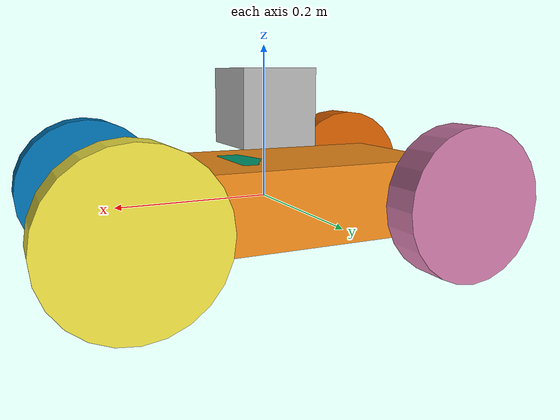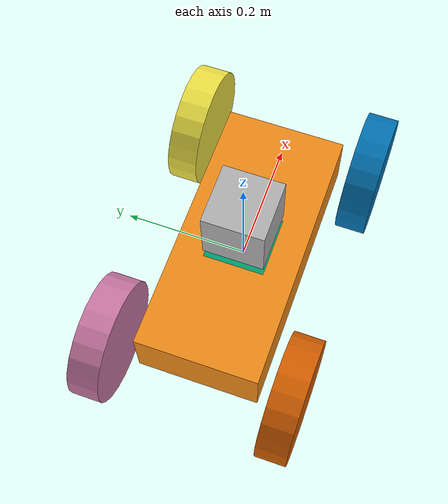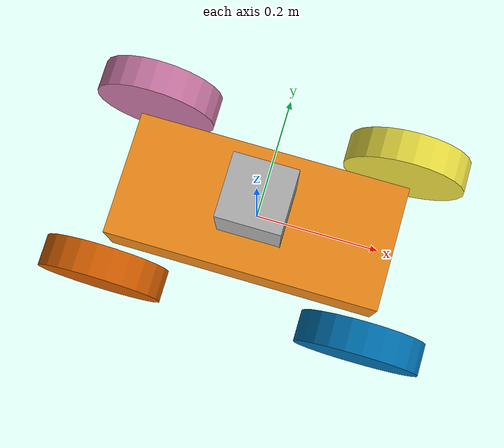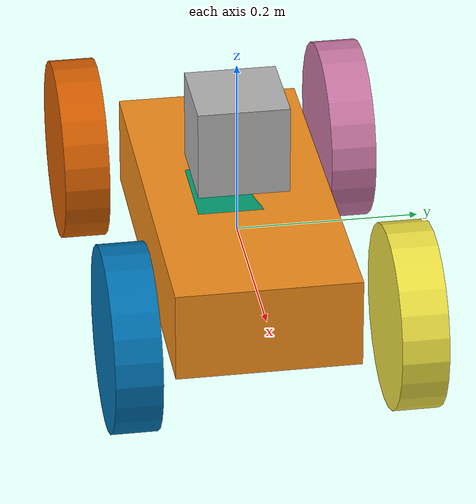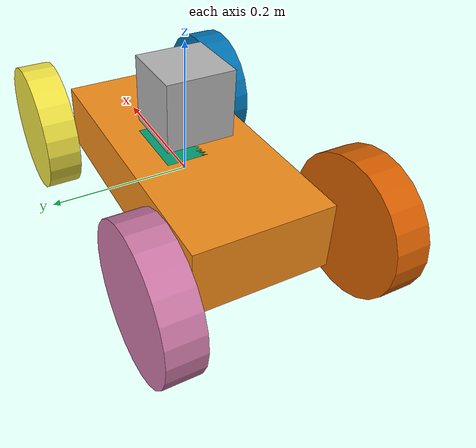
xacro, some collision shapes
<?xml version='1.0'?>
<robot name="myrobot" xmlns:xacro="http://www.ros.org/wiki/xacro">

  <xacro:include filename="$(find mybot_description)/urdf/mybot.gazebo" />
  <xacro:include filename="$(find mybot_description)/urdf/materials.xacro" />

  <link name='base_link'>
    <pose>0 0 0 0 0 0</pose>
    <collision name='collision'>
      <geometry>
        <box size=".44 .2 .1"/>
      </geometry>
    </collision>
    <visual name='base_link_visual'>
      <origin xyz="0 0 0" rpy=" 0 0 0"/>
      <geometry>
        <box size=".44 .2 .1"/>
      </geometry>
    </visual>
  </link>

  <link name="base_footprint"/>

  <joint name="base_link_to_base_footprint" type="fixed">
    <parent link="base_link"/>
    <child link="base_footprint"/>
    <origin rpy="0 0 0" xyz="0 0 -0.1"/>
  </joint>

  <link name='imu_link'>
    <pose>0 0 0 0 0 0</pose>
    <inertial>
      <mass value="3.0"/>
      <origin xyz="0.0 0 0." rpy=" 0 0 0"/>
      <inertia
          ixx="0.5" ixy="0" ixz="0"
          iyy="1.0" iyz="0"
          izz="0.1"
      />
    </inertial>
    <visual name='imu_visual'>
      <origin xyz="0 0 0" rpy=" 0 0 0"/>
      <geometry>
        <box size=".1 .1 .1"/>
      </geometry>
    </visual>
  </link>

  <link name="front_left_wheel">
    <!--origin xyz="0.1 0.13 0.1" rpy="0 1.5707 1.5707"/-->
    <collision name="collision">
      <origin xyz="0 0 0" rpy="0 1.5707 1.5707"/>
      <geometry>
        <cylinder radius="0.1" length="0.05"/>
      </geometry>
    </collision>
    <visual name="front_left_wheel_visual">
      <origin xyz="0 0 0" rpy="0 1.5707 1.5707"/>
      <geometry>
        <cylinder radius="0.1" length="0.05"/>
      </geometry>
    </visual>
    <inertial>
      <origin xyz="0 0 0" rpy="0 1.5707 1.5707"/>
      <mass value="5"/>
      <cylinder_inertia m="5" r="0.1" h="0.05"/>
      <inertia
        ixx="1.0" ixy="0.0" ixz="0.0"
        iyy="1.0" iyz="0.0"
        izz="1.0"/>
    </inertial>
  </link>

  <link name="front_right_wheel">
    <!--origin xyz="0.1 -0.13 0.1" rpy="0 1.5707 1.5707"/-->
    <collision name="collision">
      <origin xyz="0 0 0" rpy="0 1.5707 1.5707"/>
      <geometry>
        <cylinder radius="0.1" length="0.05"/>
      </geometry>
    </collision>
    <visual name="front_right_wheel_visual">
      <origin xyz="0 0 0" rpy="0 1.5707 1.5707"/>
      <geometry>
        <cylinder radius="0.1" length="0.05"/>
      </geometry>
    </visual>
    <inertial>
      <origin xyz="0 0 0" rpy="0 1.5707 1.5707"/>
      <mass value="5"/>
      <cylinder_inertia m="5" r="0.1" h="0.05"/>
      <inertia
        ixx="1.0" ixy="0.0" ixz="0.0"
        iyy="1.0" iyz="0.0"
        izz="1.0"/>
    </inertial>
  </link>

  <link name="back_right_wheel">
    <!--origin xyz="0.1 -0.13 0.1" rpy="0 1.5707 1.5707"/-->
    <collision name="collision">
      <origin xyz="0 0 0" rpy="0 1.5707 1.5707"/>
      <geometry>
        <cylinder radius="0.1" length="0.05"/>
      </geometry>
    </collision>
    <visual name="back_right_wheel_visual">
      <origin xyz="0 0 0" rpy="0 1.5707 1.5707"/>
      <geometry>
        <cylinder radius="0.1" length="0.05"/>
      </geometry>
    </visual>
    <inertial>
      <origin xyz="0 0 0" rpy="0 1.5707 1.5707"/>
      <mass value="5"/>
      <cylinder_inertia m="5" r="0.1" h="0.05"/>
      <inertia
        ixx="1.0" ixy="0.0" ixz="0.0"
        iyy="1.0" iyz="0.0"
        izz="1.0"/>
    </inertial>
  </link>

  <link name="back_left_wheel">
    <!--origin xyz="0.1 -0.13 0.1" rpy="0 1.5707 1.5707"/-->
    <collision name="collision">
      <origin xyz="0 0 0" rpy="0 1.5707 1.5707"/>
      <geometry>
        <cylinder radius="0.1" length="0.05"/>
      </geometry>
    </collision>
    <visual name="back_left_wheel_visual">
      <origin xyz="0 0 0" rpy="0 1.5707 1.5707"/>
      <geometry>
        <cylinder radius="0.1" length="0.05"/>
      </geometry>
    </visual>
    <inertial>
      <origin xyz="0 0 0" rpy="0 1.5707 1.5707"/>
      <mass value="5"/>
      <cylinder_inertia m="5" r="0.1" h="0.05"/>
      <inertia
        ixx="1.0" ixy="0.0" ixz="0.0"
        iyy="1.0" iyz="0.0"
        izz="1.0"/>
    </inertial>
  </link>

  <joint type="continuous" name="front_left_wheel_hinge">
    <origin xyz="0.21 0.15 0" rpy="0 0 0"/>
    <child link="front_left_wheel"/>
    <parent link="base_link"/>
    <axis xyz="0 1 0" rpy="0 0 0"/>
    <limit effort="100" velocity="100"/>
    <joint_properties damping="0.0" friction="0.0"/>
  </joint>

  <joint type="continuous" name="front_right_wheel_hinge">
    <origin xyz="0.21 -0.15 0" rpy="0 0 0"/>
    <child link="front_right_wheel"/>
    <parent link="base_link"/>
    <axis xyz="0 1 0" rpy="0 0 0"/>
    <limit effort="100" velocity="100"/>
    <joint_properties damping="0.0" friction="0.0"/>
  </joint>

  <joint type="continuous" name="back_right_wheel_hinge">
    <origin xyz="-0.21 -0.15 0" rpy="0 0 0"/>
    <child link="back_right_wheel"/>
    <parent link="base_link"/>
    <axis xyz="0 1 0" rpy="0 0 0"/>
    <limit effort="100" velocity="100"/>
    <joint_properties damping="0.0" friction="0.0"/>
  </joint>

  <joint type="continuous" name="back_left_wheel_hinge">
    <origin xyz="-0.21 0.15 0" rpy="0 0 0"/>
    <child link="back_left_wheel"/>
    <parent link="base_link"/>
    <axis xyz="0 1 0" rpy="0 0 0"/>
    <limit effort="100" velocity="100"/>
    <joint_properties damping="0.0" friction="0.0"/>
  </joint>

  <!-- Hokuyo Laser -->
  <link name="hokuyo">
    <collision>
      <origin xyz="0 0 0" rpy="0 0 0"/>
      <geometry>
    <box size="0.1 0.1 0.1"/>
      </geometry>
    </collision>

    <visual>
      <origin xyz="0 0 0" rpy="0 0 0"/>
      <geometry>
        <mesh filename="package://mybot_description/meshes/hokuyo.dae"/>
      </geometry>
    </visual>

    <inertial>
      <mass value="1e-5" />
      <origin xyz="0 0 0" rpy="0 0 0"/>
      <inertia ixx="1e-6" ixy="0" ixz="0" iyy="1e-6" iyz="0" izz="1e-6" />
    </inertial>
  </link>

  <joint name="hokuyo_joint" type="fixed">
    <axis xyz="0 1 0" />
    <origin xyz="0 0 .12" rpy="0 0 0"/>
    <parent link="base_link"/>
    <child link="hokuyo"/>
  </joint>

  <joint name="imu_joint" type="fixed">
    <axis xyz="0 0 0" />
    <origin xyz="0 0 0" rpy="0 0 0"/>
    <parent link="base_link"/>
    <child link="imu_link"/>
  </joint>
</robot>
